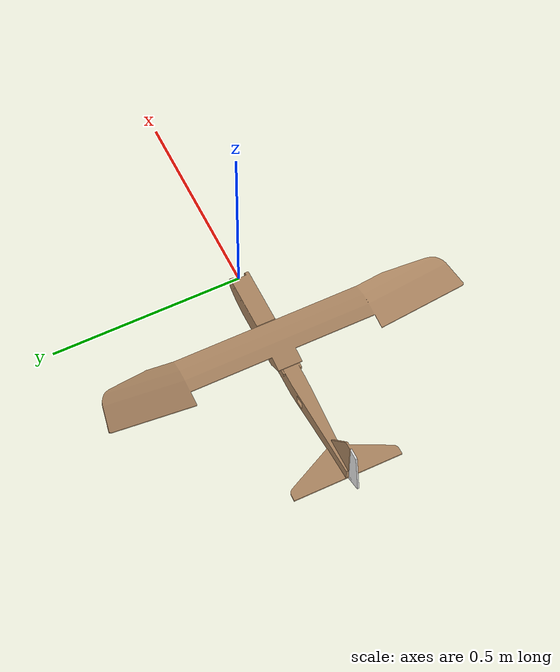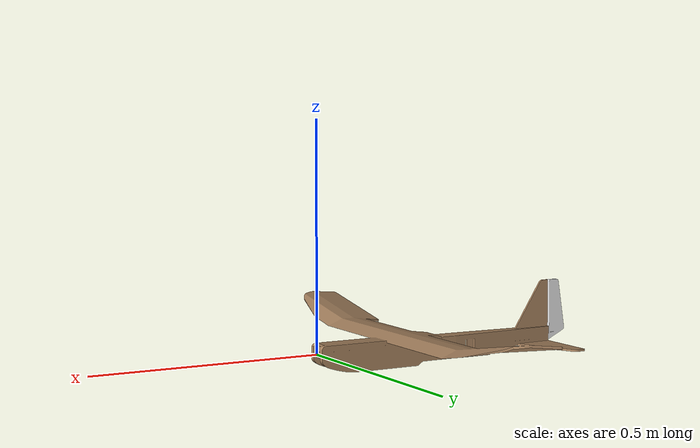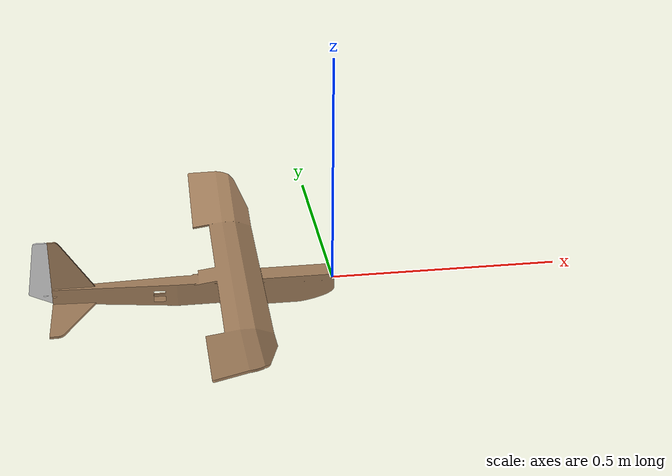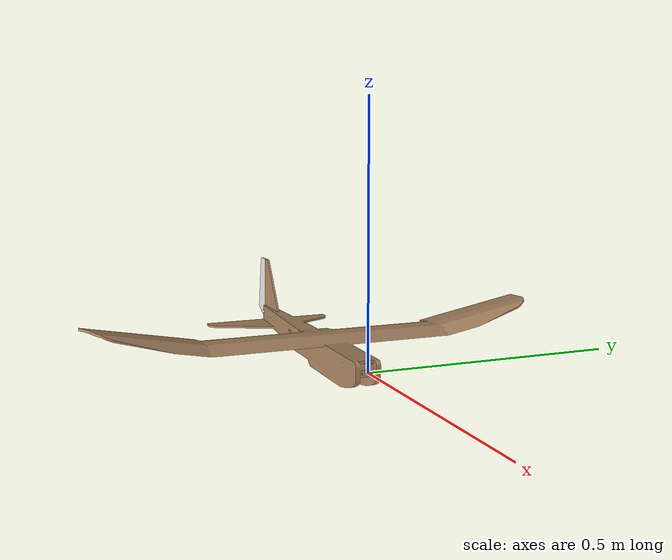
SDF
<?xml version='1.0'?>
<sdf version='1.6'>
  <model name="miniscout">
    <link name='base_link'>
      <inertial>
        <pose>-0.15 0 0 0 0 0</pose>
        <mass>0.270</mass>
        <inertia>
          <ixx>1e-3</ixx>
          <iyy>1e-3</iyy>
          <izz>1e-3</izz>
        </inertia>
      </inertial>
      <collision name='collision'>
        <geometry>
          <mesh>
            <scale>0.0254 0.0254 0.0254</scale>
            <uri>model://tiny_trainer/meshes/stl/TinyTrainer_AllCATPart_Main.stl</uri>
          </mesh>
        </geometry>
        <surface>
          <friction>
            <ode>
              <mu>0.2</mu>
              <mu2>0.2</mu2>
            </ode>
          </friction>
          <contact>
            <ode>
              <max_vel>0.1</max_vel>
              <min_depth>0.001</min_depth>
            </ode>
          </contact>
        </surface>
      </collision>
      <visual name='visual-body'>
        <geometry>
          <mesh>
            <scale>0.0254 0.0254 0.0254</scale>
            <uri>model://tiny_trainer/meshes/stl/TinyTrainer_AllCATPart_Main.stl</uri>
          </mesh>
        </geometry>
        <material>
          <ambient>0.678 0.529 0.384 1</ambient>
          <diffuse>0.678 0.529 0.384 1</diffuse>
          <specular>0.678 0.529 0.384 1</specular>
        </material>
      </visual>
      <visual name='visual-rudder'>
        <cast_shadows>0</cast_shadows>
        <geometry>
          <mesh>
            <scale>0.0254 0.0254 0.0254</scale>
            <uri>model://tiny_trainer/meshes/stl/TinyTrainer_AllCATPart_Rudder.stl</uri>
          </mesh>
        </geometry>
        <material>
          <script>
            <name>Gazebo/White</name>
          </script>
        </material>
      </visual>
    </link>
  </model>

</sdf>

<!-- vim: set et fenc=utf-8 ft=xml ff=unix sts=0 sw=2 ts=2 : -->
